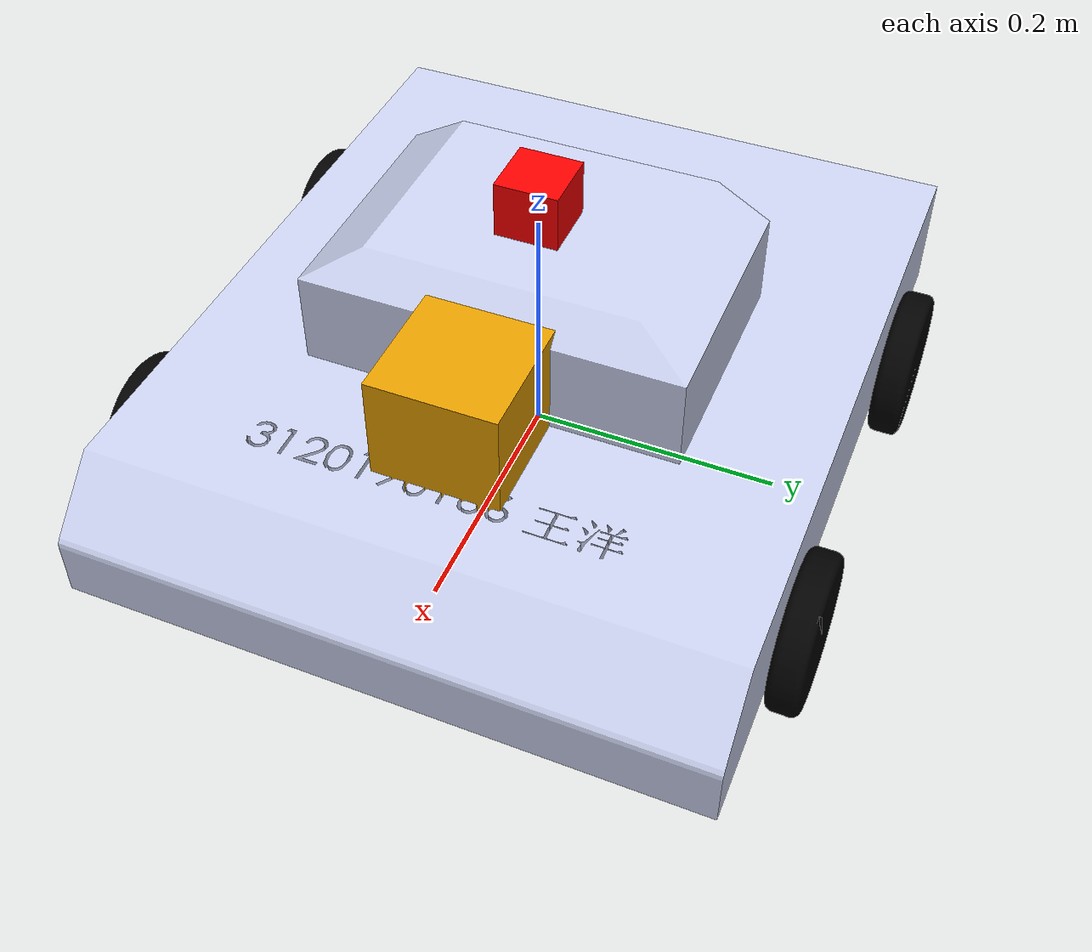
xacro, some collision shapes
<?xml version="1.0"?>

<robot xmlns:xacro="http://www.ros.org/wiki/xacro"
 	xmlns:sensor="http://playerstage.sourceforge.net/gazebo/xmlschema/#sensor"
    	xmlns:controller="http://playerstage.sourceforge.net/gazebo/xmlschema/#controller"
    	xmlns:interface="http://playerstage.sourceforge.net/gazebo/xmlschema/#interface"
	name="newrobot2">

	<xacro:property name="camera_link" value="0.05" />
	<xacro:macro name="default_inertial" params="mass">
        <inertial>
            <mass value="${mass}" />
            <inertia ixx="0.2" ixy="0.0" ixz="0.0"
                     iyy="0.2" iyz="0.0"
                     izz="0.2" />
        </inertial>
	</xacro:macro>

	<xacro:include filename="$(find robot_description)/urdf/robot.gazebo" />

    <link name="base_footprint">
		<visual>
			<geometry>
				<box size="0.001 0.001 0.001"/>
			</geometry>
			<origin rpy="0 0 0" xyz="0 0 0"/>
		</visual>
	</link>

	<gazebo reference="base_footprint">
		<material>Gazebo/Green</material>
		<turnGravityOff>false</turnGravityOff>
	</gazebo>

	<joint name="base_footprint_joint" type="fixed">
		<parent link="base_footprint" />
		<child link="base_link" />
		<origin xyz="0 0 0" />
	</joint>

  <link
    name="base_link">
	<xacro:default_inertial mass="4"/>
    <visual>
      <origin
        xyz="0 0 0"
        rpy="0 0 0" />
      <geometry>
        <mesh
          filename="package://robot_description/meshes/base_link.STL" />
      </geometry>
      <material
        name="">
        <color
          rgba="0.79216 0.81961 0.93333 1" />
      </material>
    </visual>
    <collision>
      <origin
        xyz="0 0 0"
        rpy="0 0 0" />
      <geometry>
        <mesh
          filename="package://robot_description/meshes/base_link.STL" />
      </geometry>
    </collision>
  </link>

  <link
    name="left_front_wheel_link">
	<xacro:default_inertial mass="0.2"/>
    <visual>
      <origin
        xyz="0 0 0"
        rpy="0 0 0" />
      <geometry>
        <mesh
          filename="package://robot_description/meshes/left_front_wheel_link.STL" />
      </geometry>
      <material
        name="black">
        <color
          rgba="0 0 0 1" />
      </material>
    </visual>
    <collision>
      <origin
        xyz="0 0 0"
        rpy="0 0 0" />
      <geometry>
        <mesh
          filename="package://robot_description/meshes/left_front_wheel_link.STL" />
      </geometry>
    </collision>
  </link>

  <joint
    name="left_front_wheel"
    type="continuous">
    <origin
      xyz="0.15 0.252 0.025"
      rpy="2.0688 0 1.5708" />
    <parent
      link="base_link" />
    <child
      link="left_front_wheel_link" />
    <axis
      xyz="1 0 0" />
  </joint>

  <link
    name="right_front_wheel_link">
	<xacro:default_inertial mass="0.2"/>
    <visual>
      <origin
        xyz="0 0 0"
        rpy="0 0 0" />
      <geometry>
        <mesh
          filename="package://robot_description/meshes/right_front_wheel_link.STL" />
      </geometry>
      <material
        name="black">
        <color
          rgba="0 0 0 1" />
      </material>
    </visual>
    <collision>
      <origin
        xyz="0 0 0"
        rpy="0 0 0" />
      <geometry>
        <mesh
          filename="package://robot_description/meshes/right_front_wheel_link.STL" />
      </geometry>
    </collision>
  </link>
  <joint
    name="right_front_wheel"
    type="continuous">
    <origin
      xyz="0.15 -0.252 0.025"
      rpy="-2.9622397403851 0 -1.5707963267949" />
    <parent
      link="base_link" />
    <child
      link="right_front_wheel_link" />
    <axis
      xyz="-1 0 0" />
  </joint>
  <link
    name="left_back_wheel_link">
	<xacro:default_inertial mass="0.2"/>
    <visual>
      <origin
        xyz="0 0 0"
        rpy="0 0 0" />
      <geometry>
        <mesh
          filename="package://robot_description/meshes/left_back_wheel_link.STL" />
      </geometry>
      <material
        name="black">
        <color
          rgba="0 0 0 1" />
      </material>
    </visual>
    <collision>
      <origin
        xyz="0 0 0"
        rpy="0 0 0" />
      <geometry>
        <mesh
          filename="package://robot_description/meshes/left_back_wheel_link.STL" />
      </geometry>
    </collision>
  </link>
  <joint
    name="left_back_wheel"
    type="continuous">
    <origin
      xyz="-0.15 0.252 0.025"
      rpy="-2.45021617022748 0 1.5707963267949" />
    <parent
      link="base_link" />
    <child
      link="left_back_wheel_link" />
    <axis
      xyz="1 0 0" />
  </joint>
  <link
    name="right_back_wheel_link">
	<xacro:default_inertial mass="0.2"/>
    <visual>
      <origin
        xyz="0 0 0"
        rpy="0 0 0" />
      <geometry>
        <mesh
          filename="package://robot_description/meshes/right_back_wheel_link.STL" />
      </geometry>
      <material
        name="black">
        <color
          rgba="0 0 0 1" />
      </material>
    </visual>
    <collision>
      <origin
        xyz="0 0 0"
        rpy="0 0 0" />
      <geometry>
        <mesh
          filename="package://robot_description/meshes/right_back_wheel_link.STL" />
      </geometry>
    </collision>
  </link>
  <joint
    name="right_back_wheel"
    type="continuous">
    <origin
      xyz="-0.15 -0.252 0.025"
      rpy="-3.03612140703945 0 -1.5707963267949" />
    <parent
      link="base_link" />
    <child
      link="right_back_wheel_link" />
    <axis
      xyz="-1 0 0" />
  </joint>
  <link
    name="upper_link">
	<xacro:default_inertial mass="0.2"/>
    <visual>
      <origin
        xyz="0 0 0"
        rpy="0 0 0" />
      <geometry>
        <mesh
          filename="package://robot_description/meshes/upper_link.STL" />
      </geometry>
      <material
        name="">
        <color
          rgba="0.79216 0.81961 0.93333 1" />
      </material>
    </visual>
    <collision>
      <origin
        xyz="0 0 0"
        rpy="0 0 0" />
      <geometry>
        <mesh
          filename="package://robot_description/meshes/upper_link.STL" />
      </geometry>
    </collision>
  </link>
  <joint
    name="upper"
    type="fixed">
    <origin
      xyz="0 0 0.1"
      rpy="1.5708 0 0" />
    <parent
      link="base_link" />
    <child
      link="upper_link" />
    <axis
      xyz="0 0 0" />
  </joint>

  <joint name="camera_joint" type="fixed">
    <axis xyz="0 1 0" />
    <origin xyz="0 0 0.22" rpy="0 0 0"/>
    <parent link="base_link"/>
    <child link="camera_link"/>
  </joint>
  <link name="camera_link">
    <collision>
      <origin xyz="0 0 0" rpy="0 0 0"/>
      <geometry>
	<box size="0.05 0.05 0.05"/>
      </geometry>
    </collision>

    <visual>
      <origin xyz="0 0 0" rpy="0 0 0"/>
      <geometry>
	<box size="0.05 0.05 0.05"/>
      </geometry>
      <material name="red">
	<color rgba="1 0 0 1"/>
      </material>
    </visual>

    <inertial>
      <mass value="1e-5" />
      <origin xyz="0 0 0" rpy="0 0 0"/>
      <inertia ixx="1e-6" ixy="0" ixz="0" iyy="1e-6" iyz="0" izz="1e-6" />
    </inertial>
  </link>

  <joint name="laser_joint" type="fixed">
    <origin xyz="0.14 0 0.135" rpy="0 0 0"/>
    <parent link="base_link"/>
    <axis xyz="0 1 0" />
    <child link="laser_link"/>
  </joint>
  <link name="laser_link">
    <collision>
      <origin xyz="0 0 0" rpy="0 0 0"/>
      <geometry>
	<box size="0.1 0.1 0.1"/>
      </geometry>
    </collision>

    <visual>
      <origin xyz="0 0 0" rpy="0 0 0"/>
      <geometry>
        <mesh filename="package://robot_description/meshes/hokuyo.dae"/>
      </geometry>
    </visual>

    <inertial>
      <mass value="1e-5" />
      <origin xyz="0 0 0" rpy="0 0 0"/>
      <inertia ixx="1e-6" ixy="0" ixz="0" iyy="1e-6" iyz="0" izz="1e-6" />
    </inertial>
  </link>

<gazebo>
  <plugin name="skid_steer_drive_controller" filename="libgazebo_ros_skid_steer_drive.so">
    <updateRate>100.0</updateRate>
    <robotNamespace>/</robotNamespace>
    <leftFrontJoint>left_front_wheel</leftFrontJoint>
    <rightFrontJoint>right_front_wheel</rightFrontJoint>
    <leftRearJoint>left_back_wheel</leftRearJoint>
    <rightRearJoint>right_back_wheel</rightRearJoint>
    <wheelSeparation>4</wheelSeparation>
    <wheelDiameter>0.12</wheelDiameter>
    <robotBaseFrame>base_footprint</robotBaseFrame>
    <torque>1</torque>
    <topicName>cmd_vel</topicName>
    <odometryTopic>odom</odometryTopic>
	<odometryFrame>odom</odometryFrame>
    <broadcastTF>true</broadcastTF>
  </plugin>
</gazebo>

</robot>
